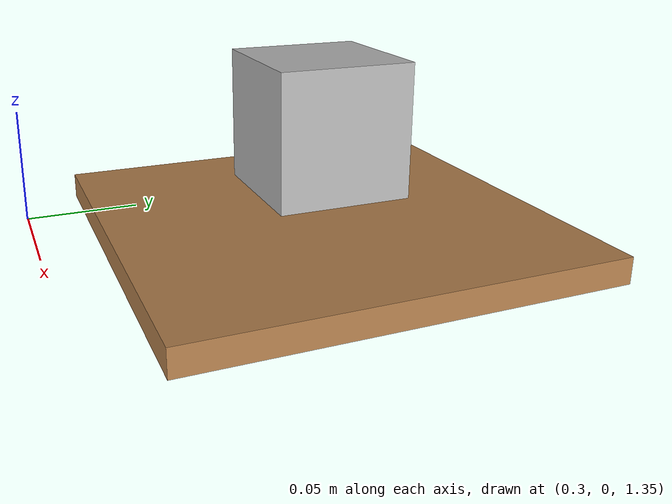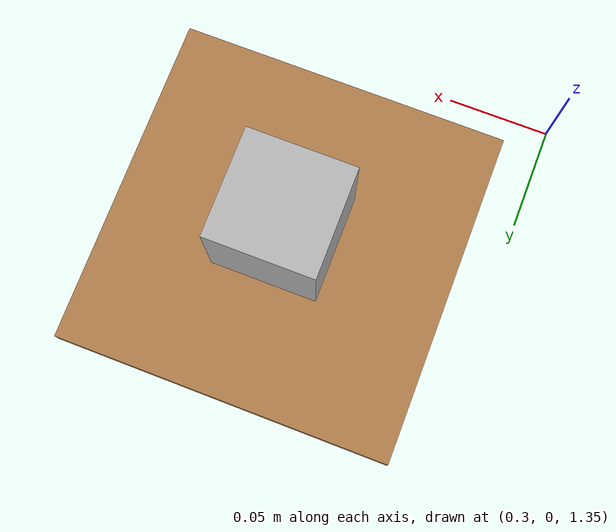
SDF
<?xml version="1.0" ?>
<sdf version="1.4">

  <world name="default">
    <include>
      <uri>model://ground_plane</uri>
    </include>

    <include>
      <uri>model://sun</uri>
    </include>

    <physics name="default_physics" default="true" type="ode">
      <max_step_size>0.001</max_step_size>
      <real_time_update_rate>1000</real_time_update_rate>
      <ode>
        <solver>
          <type>quick</type>
          <iters>100</iters>
          <sor>1.3</sor>
        </solver>
        <constraints>
          <cfm>0</cfm>
          <erp>0.2</erp>
          <contact_max_correcting_vel>10.0</contact_max_correcting_vel>
          <contact_surface_layer>0.001</contact_surface_layer>
        </constraints>
      </ode>
    </physics>

    <model name='cube_stand'>
      <static>true</static>
      <pose>0.4 0.1 1.37 0 0 0</pose>
      <link name='link'>
        <collision name='collision'>
          <geometry>
            <box>
              <size>0.16 0.16 0.01</size>
            </box>
          </geometry>
          <surface>
            <friction><ode><mu>1.0</mu><mu2>1.0</mu2></ode></friction>
          </surface>
        </collision>
        <visual name='visual'>
          <geometry>
            <box>
              <size>0.16 0.16 0.01</size>
            </box>
          </geometry>
          <material>
            <script>
              <uri>file://media/materials/scripts/gazebo.material</uri>
              <name>Gazebo/Wood</name>
            </script>
          </material>
        </visual>
      </link>
    </model>

    <model name='apriltag_cube'>
      <!-- Spawn a couple cm above the table top (z=1.375) so it settles gently
           instead of exploding out of an exact-boundary contact. -->
      <pose>0.4 0.1 1.41 0 0 0</pose>
      <link name='link'>
        <inertial>
          <mass>0.2</mass>
          <inertia>
            <ixx>8.33e-5</ixx>
            <ixy>0</ixy>
            <ixz>0</ixz>
            <iyy>8.33e-5</iyy>
            <iyz>0</iyz>
            <izz>8.33e-5</izz>
          </inertia>
        </inertial>
        <collision name='collision'>
          <geometry>
            <box>
              <size>0.05 0.05 0.05</size>
            </box>
          </geometry>
          <surface>
            <friction>
              <ode><mu>1.0</mu><mu2>1.0</mu2></ode>
            </friction>
            <contact>
              <ode><kp>1e5</kp><kd>1.0</kd><max_vel>0.1</max_vel><min_depth>0.001</min_depth></ode>
            </contact>
          </surface>
        </collision>
        <visual name='visual'>
          <geometry>
            <box>
              <size>0.05 0.05 0.05</size>
            </box>
          </geometry>
          <material>
            <script>
              <uri>materials/scripts</uri>
              <uri>materials/textures</uri>
              <name>AprilTag/Cube</name>
            </script>
          </material>
        </visual>
      </link>
    </model>

  </world>
</sdf>
